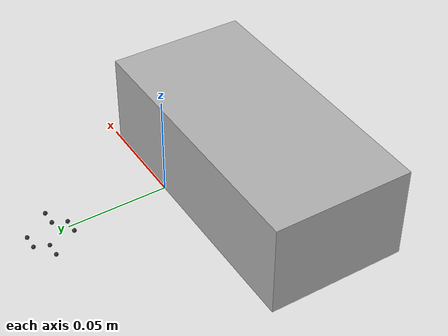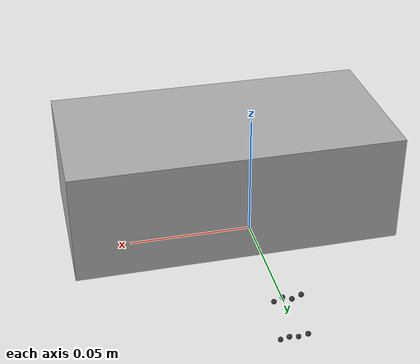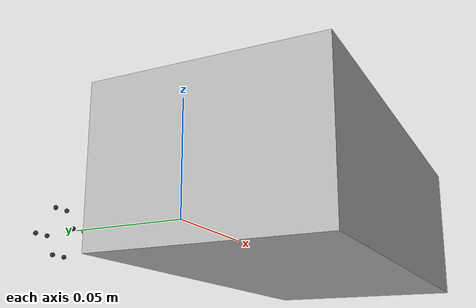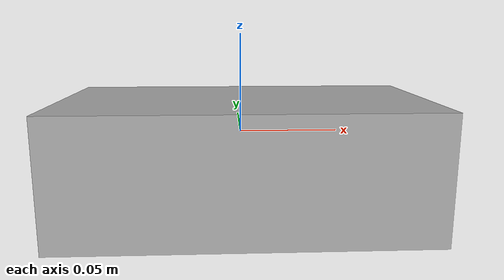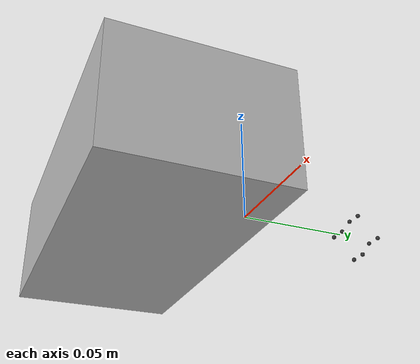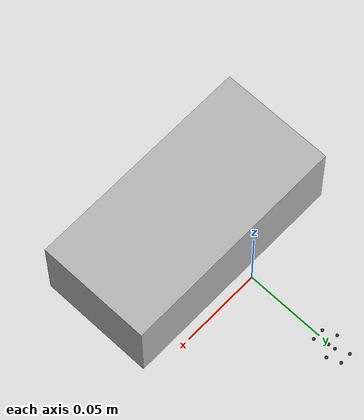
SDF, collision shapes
<?xml version="1.0"?>
<sdf version="1.8">
  <model name="Schunk_Gripper">
    <link name="gripper_base">
      <pose>0 -0.049133 0 0 0 0</pose>
      <inertial>
        <mass>0.988882</mass>
        <inertia>
          <ixx>0.162992</ixx>
          <ixy>0</ixy>
          <ixz>0</ixz>
          <iyy>0.162992</iyy>
          <iyz>0</iyz>
          <izz>0.164814</izz>
        </inertia>
      </inertial>
      <self_collide>0</self_collide>
      <kinematic>0</kinematic>
      <visual name="visual">
        <geometry>
          <mesh>
            <scale>1 1 1</scale>
            <uri>package://drake/manipulation/models/wsg_50_description/meshes/wsg_body.obj</uri>
          </mesh>
        </geometry>
        <material>
          <diffuse>0.7 0.7 0.7 1</diffuse>
        </material>
      </visual>
      <collision name="collision">
        <laser_retro>0</laser_retro>
        <max_contacts>10</max_contacts>
        <geometry>
          <box>
            <size>0.146 0.0725 0.05</size>
          </box>
        </geometry>
        <surface>
          <friction>
            <ode>
              <mu>1</mu>
              <mu2>1</mu2>
              <fdir1>0 0 0</fdir1>
              <slip1>0</slip1>
              <slip2>0</slip2>
            </ode>
            <torsional>
              <coefficient>1</coefficient>
              <patch_radius>0</patch_radius>
              <surface_radius>0</surface_radius>
              <use_patch_radius>1</use_patch_radius>
              <ode>
                <slip>0</slip>
              </ode>
            </torsional>
          </friction>
          <bounce>
            <restitution_coefficient>0</restitution_coefficient>
            <threshold>1e+06</threshold>
          </bounce>
          <contact>
            <collide_without_contact>0</collide_without_contact>
            <collide_without_contact_bitmask>1</collide_without_contact_bitmask>
            <collide_bitmask>1</collide_bitmask>
            <ode>
              <soft_cfm>0</soft_cfm>
              <soft_erp>0.2</soft_erp>
              <kp>1e+13</kp>
              <kd>1</kd>
              <max_vel>0.01</max_vel>
              <min_depth>0</min_depth>
            </ode>
            <bullet>
              <split_impulse>1</split_impulse>
              <split_impulse_penetration_threshold>-0.01</split_impulse_penetration_threshold>
              <soft_cfm>0</soft_cfm>
              <soft_erp>0.2</soft_erp>
              <kp>1e+13</kp>
              <kd>1</kd>
            </bullet>
          </contact>
        </surface>
      </collision>
    </link>

    <frame name="body_frame">
      <pose relative_to="gripper_base"/>
    </frame>

    <link name="left_finger">
      <pose>-0.0115 0.028 0 0 3.141592 0</pose>
      <inertial>
        <mass>0.05</mass>
        <inertia>
          <ixx>0.16</ixx>
          <ixy>0</ixy>
          <ixz>0</ixz>
          <iyy>0.16</iyy>
          <iyz>0</iyz>
          <izz>0.16</izz>
        </inertia>
      </inertial>
      <self_collide>0</self_collide>
      <kinematic>0</kinematic>
      <visual name="visual">
        <geometry>
          <mesh>
            <scale>1 1 1</scale>
            <uri>package://drake/manipulation/models/wsg_50_description/meshes/finger_with_tip.obj</uri>
          </mesh>
        </geometry>
        <material>
          <diffuse>0.2 0.2 0.2 1</diffuse>
        </material>
      </visual>

      <collision name="left_top">
	      <pose> -0.008 0.021 0 0 0 0 </pose>
	      <geometry>
	        <sphere>
            <radius> 0.001 </radius>
          </sphere>
        </geometry>
        <drake:proximity_properties>
          <drake:compliant_hydroelastic/>
          <drake:mesh_resolution_hint>0.1</drake:mesh_resolution_hint>
          <drake:hydroelastic_modulus>5e7</drake:hydroelastic_modulus>
          <drake:hunt_crossley_dissipation>1.25</drake:hunt_crossley_dissipation>
        </drake:proximity_properties>
      </collision>

      <collision name="left_bottom">
	      <pose> -0.008 0.041 0 0 0 0 </pose>
	      <geometry>
	        <sphere>
            <radius> 0.001 </radius>
          </sphere>
        </geometry>
        <drake:proximity_properties>
          <drake:compliant_hydroelastic/>
          <drake:mesh_resolution_hint>0.1</drake:mesh_resolution_hint>
          <drake:hydroelastic_modulus>5e7</drake:hydroelastic_modulus>
          <drake:hunt_crossley_dissipation>1.25</drake:hunt_crossley_dissipation>
        </drake:proximity_properties>
      </collision>

      <collision name="left_left">
	      <pose> -0.008 0.031 -0.01 0 0 0 </pose>
	      <geometry>
	        <sphere>
            <radius> 0.001 </radius>
          </sphere>
        </geometry>
        <drake:proximity_properties>
          <drake:compliant_hydroelastic/>
          <drake:mesh_resolution_hint>0.1</drake:mesh_resolution_hint>
          <drake:hydroelastic_modulus>5e7</drake:hydroelastic_modulus>
          <drake:hunt_crossley_dissipation>1.25</drake:hunt_crossley_dissipation>
        </drake:proximity_properties>
      </collision>

      <collision name="left_right">
	      <pose> -0.008 0.031 0.01 0 0 0 </pose>
	      <geometry>
	        <sphere>
            <radius> 0.001 </radius>
          </sphere>
        </geometry>
        <drake:proximity_properties>
          <drake:compliant_hydroelastic/>
          <drake:mesh_resolution_hint>0.1</drake:mesh_resolution_hint>
          <drake:hydroelastic_modulus>5e7</drake:hydroelastic_modulus>
          <drake:hunt_crossley_dissipation>1.25</drake:hunt_crossley_dissipation>
        </drake:proximity_properties>
      </collision>

    </link>

    <link name="right_finger">
      <pose>0.0115 0.028 0 0 0 0</pose>
      <inertial>
        <mass>0.05</mass>
        <inertia>
          <ixx>0.16</ixx>
          <ixy>0</ixy>
          <ixz>0</ixz>
          <iyy>0.16</iyy>
          <iyz>0</iyz>
          <izz>0.16</izz>
        </inertia>
      </inertial>
      <self_collide>0</self_collide>
      <kinematic>0</kinematic>
      <visual name="visual">
        <geometry>
          <mesh>
            <scale>1 1 1</scale>
            <uri>package://drake/manipulation/models/wsg_50_description/meshes/finger_with_tip.obj</uri>
          </mesh>
        </geometry>
        <material>
          <diffuse>0.2 0.2 0.2 1</diffuse>
        </material>
      </visual>

      <collision name="right_top">
	      <pose> -0.008 0.021 0 0 0 0 </pose>
	      <geometry>
	        <sphere>
            <radius> 0.001 </radius>
          </sphere>
        </geometry>
        <drake:proximity_properties>
          <drake:compliant_hydroelastic/>
          <drake:mesh_resolution_hint>0.1</drake:mesh_resolution_hint>
          <drake:hydroelastic_modulus>5e7</drake:hydroelastic_modulus>
          <drake:hunt_crossley_dissipation>1.25</drake:hunt_crossley_dissipation>
        </drake:proximity_properties>
      </collision>

      <collision name="right_bottom">
	      <pose> -0.008 0.041 0 0 0 0 </pose>
	      <geometry>
	        <sphere>
            <radius> 0.001 </radius>
          </sphere>
        </geometry>
        <drake:proximity_properties>
          <drake:compliant_hydroelastic/>
          <drake:mesh_resolution_hint>0.1</drake:mesh_resolution_hint>
          <drake:hydroelastic_modulus>5e7</drake:hydroelastic_modulus>
          <drake:hunt_crossley_dissipation>1.25</drake:hunt_crossley_dissipation>
        </drake:proximity_properties>
      </collision>

      <collision name="right_left">
	      <pose> -0.008 0.031 -0.01 0 0 0 </pose>
	      <geometry>
	        <sphere>
            <radius> 0.001 </radius>
          </sphere>
        </geometry>
        <drake:proximity_properties>
          <drake:compliant_hydroelastic/>
          <drake:mesh_resolution_hint>0.1</drake:mesh_resolution_hint>
          <drake:hydroelastic_modulus>5e7</drake:hydroelastic_modulus>
          <drake:hunt_crossley_dissipation>1.25</drake:hunt_crossley_dissipation>
        </drake:proximity_properties>
      </collision>

      <collision name="right_right">
	      <pose> -0.008 0.031 0.01 0 0 0 </pose>
	      <geometry>
	        <sphere>
            <radius> 0.001 </radius>
          </sphere>
        </geometry>
        <drake:proximity_properties>
          <drake:compliant_hydroelastic/>
          <drake:mesh_resolution_hint>0.1</drake:mesh_resolution_hint>
          <drake:hydroelastic_modulus>5e7</drake:hydroelastic_modulus>
          <drake:hunt_crossley_dissipation>1.25</drake:hunt_crossley_dissipation>
        </drake:proximity_properties>
      </collision>

    </link>

    <joint name="left_finger_sliding_joint" type="prismatic">
      <parent>gripper_base</parent>
      <child>left_finger</child>
      <axis>
        <xyz>-1 0 0</xyz>
        <!-- Drake attaches an actuator to all and only joints with a nonzero
             effort limit. -->
        <limit>
          <lower>-0.055</lower>
          <upper>0</upper>
          <effort>80</effort>
          <stiffness>15000</stiffness>
          <dissipation>50</dissipation>
        </limit>
        <dynamics>
          <spring_reference>0</spring_reference>
          <spring_stiffness>0</spring_stiffness>
          <damping>0</damping>
          <friction>0</friction>
        </dynamics>
      </axis>
      <physics>
        <ode>
          <limit>
            <cfm>0</cfm>
            <erp>0.2</erp>
          </limit>
          <suspension>
            <cfm>0</cfm>
            <erp>0.2</erp>
          </suspension>
        </ode>
      </physics>
    </joint>

    <joint name="right_finger_sliding_joint" type="prismatic">
      <parent>gripper_base</parent>
      <child>right_finger</child>
      <axis>
        <xyz>1 0 0</xyz>
        <!-- Drake attaches an actuator to all and only joints with a nonzero
             effort limit. -->
        <limit>
          <lower>0</lower>
          <upper>0.055</upper>
          <effort>80</effort>
          <stiffness>15000</stiffness>
          <dissipation>50</dissipation>
        </limit>
        <dynamics>
          <spring_reference>0</spring_reference>
          <spring_stiffness>0</spring_stiffness>
          <damping>0</damping>
          <friction>0</friction>
        </dynamics>
      </axis>
      <physics>
        <ode>
          <limit>
            <cfm>0</cfm>
            <erp>0.2</erp>
          </limit>
          <suspension>
            <cfm>0</cfm>
            <erp>0.2</erp>
          </suspension>
        </ode>
      </physics>
    </joint>
    <static>0</static>
    <allow_auto_disable>1</allow_auto_disable>
  </model>
</sdf>
